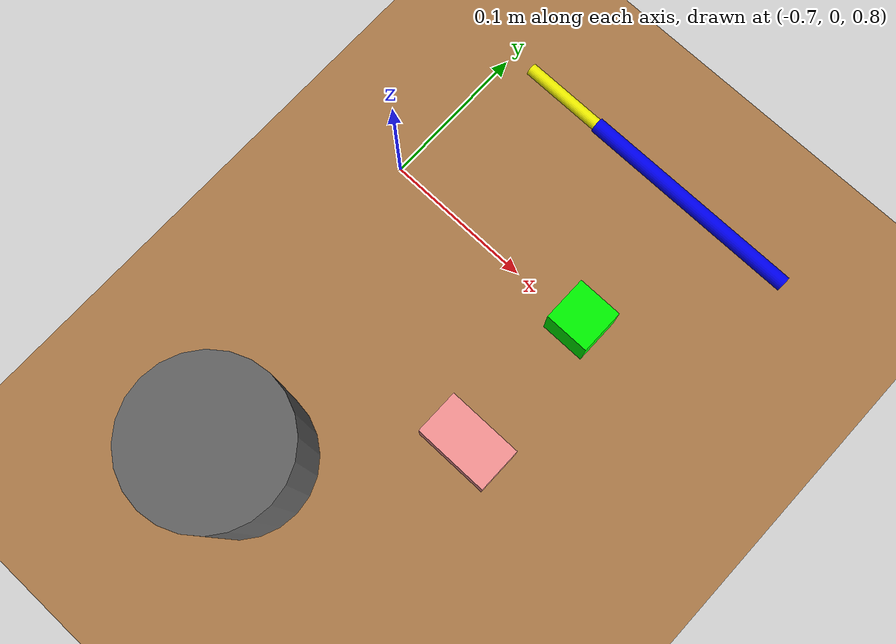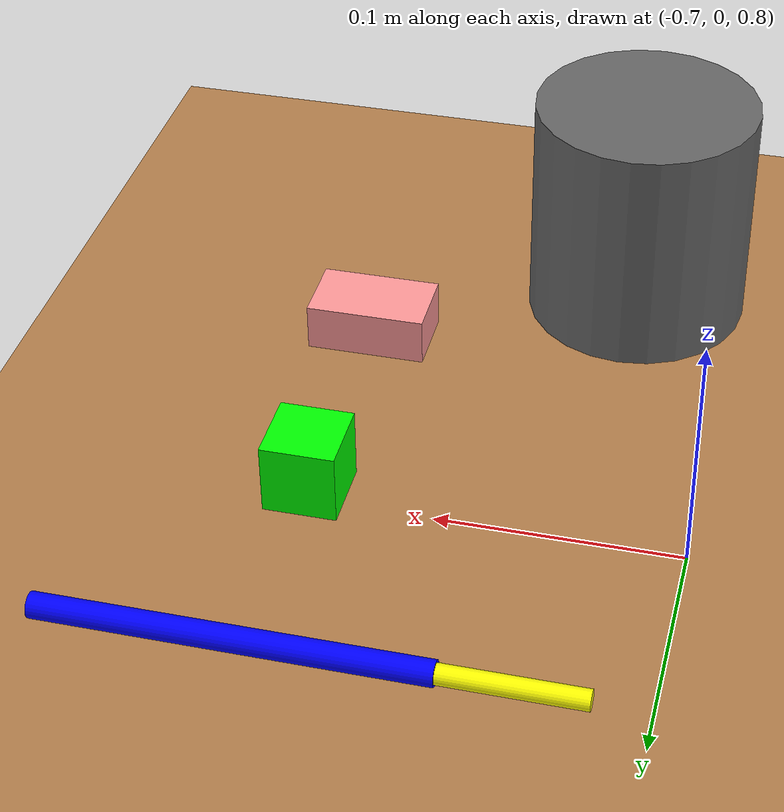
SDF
<?xml version="1.0" ?>
<sdf version="1.8">
  <world name="empty">

    <!-- LIGHTING FIX -->
    <gravity>0 0 -9.8</gravity>

    <scene>
      <ambient>0.6 0.6 0.6 1</ambient>
      <background>0.9 0.9 0.9 1</background>
      <shadows>false</shadows>
    </scene>

    <plugin filename="gz-sim-physics-system" name="gz::sim::systems::Physics"/>
    <plugin filename="gz-sim-user-commands-system" name="gz::sim::systems::UserCommands"/>
    <plugin filename="gz-sim-scene-broadcaster-system" name="gz::sim::systems::SceneBroadcaster"/>

    <!-- SUN -->
    <light type="directional" name="sun">
      <pose>0 0 10 0 0 0</pose>
      <diffuse>1 1 1 1</diffuse>
      <specular>0.3 0.3 0.3 1</specular>
      <direction>-0.3 0.1 -1</direction>
    </light>

    <!-- GROUND -->
    <model name="ground_plane">
      <static>true</static>
      <pose>0 0 -0.05 0 0 0</pose>
      <link name="link">
        <collision name="collision">
          <geometry><box><size>100 100 0.1</size></box></geometry>
        </collision>
        <visual name="visual">
          <geometry><box><size>100 100 0.1</size></box></geometry>
          <material>
            <ambient>0.7 0.7 0.7 1</ambient>
            <diffuse>0.8 0.8 0.8 1</diffuse>
          </material>
        </visual>
      </link>
    </model>

    <!-- TABLE -->
    <model name="workbench_table">
      <static>true</static>
      <pose>-0.55 0 0 0 0 0</pose>
      <link name="table_link">
        <collision name="top_collision">
          <pose>0 0 0.75 0 0 0</pose>
          <geometry><box><size>1.2 0.8 0.05</size></box></geometry>
        </collision>
        <visual name="top_visual">
          <pose>0 0 0.75 0 0 0</pose>
          <geometry><box><size>1.2 0.8 0.05</size></box></geometry>
          <material>
            <ambient>0.6 0.4 0.2 1</ambient>
            <diffuse>0.7 0.5 0.3 1</diffuse>
          </material>
        </visual>
      </link>
    </model>

    <!-- ERASER -->
    <model name="eraser">
      <pose>-0.55 -0.10 0.82 0 0 0</pose>
      <link name="link">
        <collision name="collision">
          <geometry><box><size>0.05 0.03 0.02</size></box></geometry>
        </collision>
        <visual name="visual">
          <geometry><box><size>0.05 0.03 0.02</size></box></geometry>
          <material><ambient>1 0.6 0.6 1</ambient></material>
        </visual>
      </link>
    </model>

    <!-- SHARPENER -->
    <model name="sharpener">
      <pose>-0.55 0.00 0.82 0 0 0</pose>
      <link name="link">
        <collision name="collision">
          <geometry><box><size>0.03 0.03 0.03</size></box></geometry>
        </collision>
        <visual name="visual">
          <geometry><box><size>0.03 0.03 0.03</size></box></geometry>
          <material><ambient>0 1 0 1</ambient></material>
        </visual>
      </link>
    </model>

    <!-- PEN -->
    <model name="pen">
      <pose>-0.55 0.10 0.82 0 1.57 0</pose>
      <link name="link">
        <collision name="collision">
          <geometry><cylinder><radius>0.005</radius><length>0.15</length></cylinder></geometry>
        </collision>
        <visual name="visual">
          <geometry><cylinder><radius>0.005</radius><length>0.15</length></cylinder></geometry>
          <material><ambient>0 0 1 1</ambient></material>
        </visual>
      </link>
    </model>

    <!-- PENCIL -->
    <model name="pencil">
      <pose>-0.60 0.10 0.82 0 1.57 0</pose>
      <link name="link">
        <collision name="collision">
          <geometry><cylinder><radius>0.004</radius><length>0.16</length></cylinder></geometry>
        </collision>
        <visual name="visual">
          <geometry><cylinder><radius>0.004</radius><length>0.16</length></cylinder></geometry>
          <material><ambient>1 1 0 1</ambient></material>
        </visual>
      </link>
    </model>

    <!-- HOLDER -->
    <model name="pencil_holder">
      <static>true</static>
      <pose>-0.65 -0.20 0.82 0 0 0</pose>
      <link name="link">
        <visual name="visual">
          <geometry><cylinder><radius>0.05</radius><length>0.12</length></cylinder></geometry>
          <material><ambient>0.4 0.4 0.4 1</ambient></material>
        </visual>
      </link>
    </model>

  </world>
</sdf>
